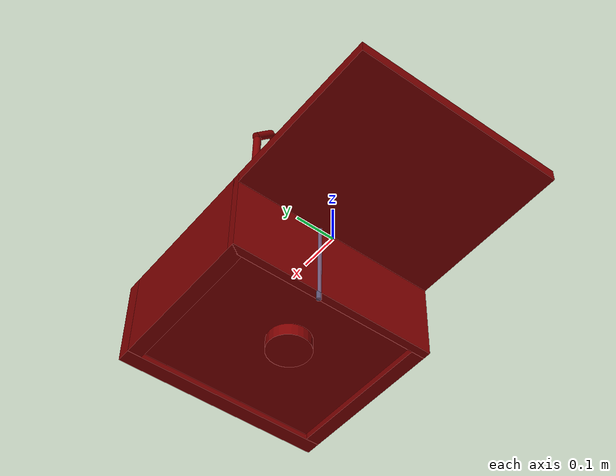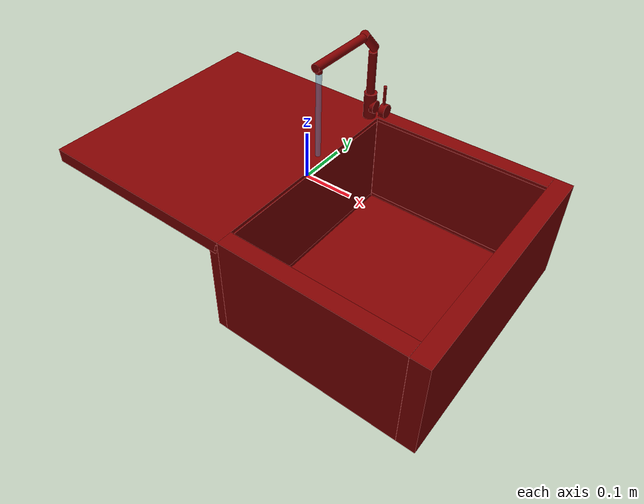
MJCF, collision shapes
<?xml version='1.0' encoding='UTF-8'?>
<mujoco model="model">
  <option timestep="0.002" gravity="0.0 0.0 -9.81"/>
  <compiler angle="radian"/>
  <asset>
    <mesh file="visuals/handle.obj" name="handle_vis"/>
    <mesh file="visuals/Body001.obj" name="Body001_vis"/>
    <mesh file="visuals/spout.obj" name="spout_vis"/>
    <texture file="visuals/T_BC001.png" name="Body001_material" type="2d"/>
    <material name="Body001_material" rgba="1 1 1 1.0" texture="Body001_material" shininess="0.587886393070221" specular="1"/>
    <texture file="visuals/T_BC001.png" name="handle_material" type="2d"/>
    <material name="handle_material" rgba="1 1 1 1.0" texture="handle_material" shininess="0.587886393070221" specular="1"/>
    <texture file="visuals/T_BC001.png" name="spout_material" type="2d"/>
    <material name="spout_material" rgba="1 1 1 1.0" texture="spout_material" shininess="0.587886393070221" specular="1"/>
  </asset>
  <default>
    <default class="visual">
      <geom conaffinity="0" contype="0" group="1" type="mesh"/>
    </default>
    <default class="collision">
      <geom group="0" rgba="0.5 0 0 0.5" solimp="0.998 0.998 0.001" solref="0.001 2"/>
    </default>
    <default class="spawn">
      <geom group="0" rgba="1 1 1 0.5" contype="0" conaffinity="0"/>
      <site group="0" rgba="1 1 1 0.5"/>
    </default>
    <default class="region">
      <geom group="1" conaffinity="0" contype="0" rgba="0 1 0 0"/>
    </default>
  </default>
  <worldbody>
    <body>
      <body name="object">
        <geom mesh="Body001_vis" type="mesh" solimp="0.998 0.998 0.001" solref="0.001 1" friction="0.95 0.3 0.1" class="visual" material="Body001_material"/>
        <geom class="collision" type="box" pos="-0.21006083 -0.00000001 0.00767329" size="0.22063221037387848 0.26440149545669556 0.014596006833016872" quat="1.0 0.0 0.0 0.0"/>
        <geom class="collision" type="box" pos="0.41206345 -0.00014385 -0.09136853" size="0.018630051985383034 0.26425763964653015 0.11348769068717957" quat="1.0 0.0 0.0 0.0"/>
        <geom class="collision" type="box" pos="0.19161091 0.24674986 -0.09136853" size="0.20151031017303467 0.017363911494612694 0.11348769068717957" quat="1.0 0.0 0.0 0.0"/>
        <geom class="collision" type="box" pos="0.19161089 -0.24697384 -0.09136853" size="0.20151033997535706 0.017427615821361542 0.11348769068717957" quat="1.0 0.0 0.0 0.0"/>
        <geom class="collision" type="box" pos="0.20225530 -0.22995342 -0.08435947" size="0.19086593389511108 0.0014722681371495128 0.09959064424037933" quat="1.0 0.0 0.0 0.0"/>
        <geom class="collision" type="box" pos="0.20225530 0.22991753 -0.08435947" size="0.19086593389511108 0.0014722681371495128 0.09959064424037933" quat="1.0 0.0 0.0 0.0"/>
        <geom class="collision" type="box" pos="0.01156765 0.00032856 -0.08435947" size="0.0011739537585526705 0.22482742369174957 0.09959064424037933" quat="1.0 0.0 0.0 0.0"/>
        <geom class="collision" type="box" pos="0.39447695 0.00032856 -0.08435947" size="0.0011739537585526705 0.22482742369174957 0.09959064424037933" quat="1.0 0.0 0.0 0.0"/>
        <geom class="collision" type="box" pos="0.20190192 0.00030896 -0.19227582" size="0.1868343949317932 0.2241944819688797 0.0038830465637147427" quat="1.0 0.0 0.0 0.0"/>
        <geom class="collision" type="cylinder" pos="-0.00816955 0.22527768 0.05134399" size="0.013920615427196026 0.02904500439763069" quat="1.0 0.0 0.0 0.0"/>
        <geom class="collision" type="cylinder" pos="0.00307343 0.22415069 0.05050052" size="0.013920619152486324 0.0049588605761528015" quat="0.7071069478988647 -4.7503021960437763e-08 0.7071065902709961 4.750299709144201e-08"/>
        <geom class="collision" type="cylinder" pos="0.15536760 -0.00035775 -0.21169163" size="0.05291753634810448 0.0159302931278944" quat="1.0 0.0 0.0 0.0"/>
        <geom class="collision" type="box" pos="0.00033596 -0.00000001 -0.09500086" size="0.01023541484028101 0.26440149545669556 0.10985535383224487" quat="1.0 0.0 0.0 0.0"/>
        <body name="handle">
          <joint axis="1.0 0.0 0.0" pos="0.02087837 0.22473663 0.05047607" limited="true" name="handle_temp_joint" type="hinge" range="-0.7853981633974483 0.7853981633974483" damping="0.5" frictionloss="1" armature="2"/>
          <joint axis="0.0 1.0 0.0" pos="0.02087837 0.22473663 0.05047607" limited="true" name="handle_joint" type="hinge" range="0 0.5" damping="0.5" frictionloss="1" armature="2"/>
          <geom mesh="handle_vis" type="mesh" solimp="0.998 0.998 0.001" solref="0.001 1" friction="0.95 0.3 0.1" class="visual" material="handle_material"/>
          <geom name="handle_main" class="collision" type="cylinder" pos="0.02650223 0.22471671 0.08590855" size="0.003368337405845523 0.021307164803147316" quat="1.9470718370939721e-07 -6.717942824252532e-08 1.0 1.3435884227419592e-07"/>
          <geom class="collision" type="cylinder" pos="0.02881479 0.22448906 0.05017698" size="0.014957386068999767 0.006886166986078024" quat="0.70710688829422 -4.7503021960437763e-08 0.7071066498756409 4.750300774958305e-08"/>
        </body>
        <body name="spout">
          <joint axis="0.0 0.0 1.0" pos="-0.00826244 0.22408599 0.19120851" limited="true" name="spout_joint" range="0.0 1.3089969389957472" type="hinge" damping="10"/>
          <site type="cylinder" rgba="0.5 0.75 1 0.5" size="0.005772154778242111 0.2162049263715744" pos="-0.00821951 0.04347442 -0.01026095" name="water"/>
          <geom mesh="spout_vis" type="mesh" solimp="0.998 0.998 0.001" solref="0.001 1" friction="0.95 0.3 0.1" class="visual" material="spout_material"/>
          <geom class="collision" type="cylinder" pos="-0.00858793 0.22403820 0.12787965" size="0.009026975370943546 0.047061484307050705" quat="1.0 0.0 0.0 0.0"/>
          <geom class="collision" type="cylinder" pos="-0.00858793 0.10862398 0.21914259" size="0.009026975370943546 0.07580804079771042" quat="0.7071068286895752 0.7071067690849304 1.5700924318127872e-16 5.9269340452702814e-24" name="spout_main"/>
          <geom class="collision" type="cylinder" pos="-0.00858793 0.20785320 0.20345309" size="0.009639048017561436 0.029844213277101517" quat="0.9302526712417603 0.36691954731941223 8.147251254125512e-17 3.892325692199141e-24"/>
          <geom class="collision" type="cylinder" pos="-0.00858793 0.04354711 0.20944294" size="0.006854245904833078 0.003997443709522486" quat="1.0 0.0 0.0 0.0"/>
        </body>
        <geom class="region" name="reg_basin" type="box" pos="0.20367614 0.0003995649999999906 -0.08430736" size="0.18576218 0.223894645 0.10335438999999999"/>
        <geom class="region" name="reg_main" type="box" pos="2.1000000000048757e-07 0.0 -0.102676265" size="0.43169327 0.26540147000000003 0.12594566499999998"/>
      </body>
    </body>
  </worldbody>
  <actuator>
    <motor name="handle_joint_actuator" joint="handle_joint" gear="10"/>
    <motor name="handle_temp_joint_actuator" joint="handle_temp_joint" gear="10"/>
    <motor name="spout_joint_actuator" joint="spout_joint" gear="10"/>
  </actuator>
</mujoco>
